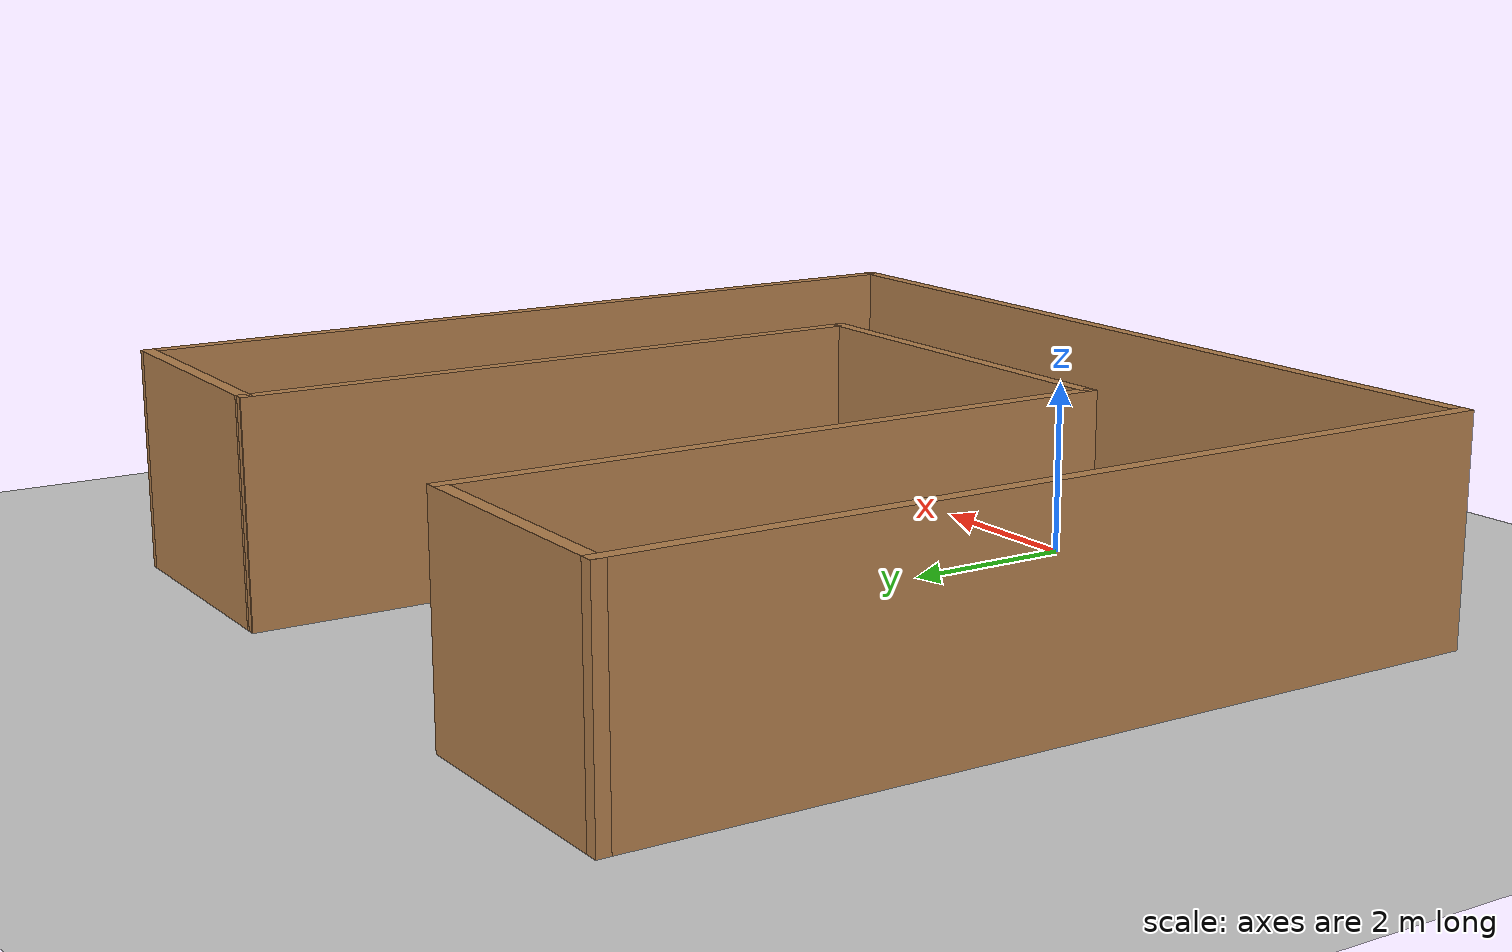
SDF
<sdf version="1.6">
 <world name="default">
  <light name="sun" type="directional">
   <pose>0 0 15 0 -0 0</pose>
   <diffuse>1 1 1 1</diffuse>
   <specular>0.1 0.1 0.1 1</specular>
   <attenuation>
    <range>1000</range>
    <constant>0.9</constant>
    <linear>0.01</linear>
    <quadratic>0.001</quadratic>
   </attenuation>
   <direction>-0.5 0.5 -1</direction>
  </light>
  <model name="ground_plane">
   <static>1</static>
   <link name="link">
    <collision name="collision">
     <geometry><plane><normal>0 0 1</normal><size>100 100</size></plane></geometry>
     <surface><friction><ode><mu>100</mu><mu2>50</mu2></ode></friction></surface>
    </collision>
    <visual name="visual">
     <transparency>1</transparency>
     <cast_shadows>0</cast_shadows>
     <geometry><plane><normal>0 0 1</normal><size>100 100</size></plane></geometry>
     <material>
      <script><uri>file://media/materials/scripts/gazebo.material</uri><name>Gazebo/Grey</name></script>
     </material>
    </visual>
   </link>
  </model>
  <gravity>0 0 -9.8</gravity>
  <magnetic_field>6e-06 2.3e-05 -4.2e-05</magnetic_field>
  <atmosphere type="adiabatic"/>
  <physics name="default_physics" default="0" type="ode">
   <max_step_size>0.001</max_step_size>
   <real_time_factor>1</real_time_factor>
   <real_time_update_rate>1000</real_time_update_rate>
  </physics>
  <scene><ambient>0.4 0.4 0.4 1</ambient><background>0.7 0.7 0.7 1</background><shadows>1</shadows></scene>
  <spherical_coordinates>
   <surface_model>EARTH_WGS84</surface_model>
   <latitude_deg>0</latitude_deg>
   <longitude_deg>0</longitude_deg>
   <elevation>0</elevation>
   <heading_deg>0</heading_deg>
  </spherical_coordinates>
  <model name="Uwolrd">
   <model name="MyUworld">
    <link name="Wall_0">
     <collision name="Wall_0_Collision">
      <geometry><box><size>2.92405 0.15 2.5</size></box></geometry>
      <pose>0 0 1.25 0 -0 0</pose>
     </collision>
     <visual name="Wall_0_Visual">
      <pose>0 0 1.25 0 -0 0</pose>
      <geometry><box><size>2.92405 0.15 2.5</size></box></geometry>
      <material>
       <script><uri>file://media/materials/scripts/gazebo.material</uri><name>Gazebo/Wood</name></script>
       <ambient>1 0 0 1</ambient>
      </material>
     </visual>
     <pose>-3.66328 4.9132 0 0 0 -3.14154</pose>
    </link>
    <link name="Wall_10">
     <collision name="Wall_10_Collision">
      <geometry><box><size>10.25 0.15 2.5</size></box></geometry>
      <pose>0 0 1.25 0 -0 0</pose>
     </collision>
     <visual name="Wall_10_Visual">
      <pose>0 0 1.25 0 -0 0</pose>
      <geometry><box><size>10.25 0.15 2.5</size></box></geometry>
      <material>
       <script><uri>file://media/materials/scripts/gazebo.material</uri><name>Gazebo/Wood</name></script>
       <ambient>1 0 0 1</ambient>
      </material>
     </visual>
     <pose>-0.000301 -4.93687 0 0 -0 3.14159</pose>
    </link>
    <link name="Wall_2">
     <collision name="Wall_2_Collision">
      <geometry><box><size>10 0.15 2.5</size></box></geometry>
      <pose>0 0 1.25 0 -0 0</pose>
     </collision>
     <visual name="Wall_2_Visual">
      <pose>0 0 1.25 0 -0 0</pose>
      <geometry><box><size>10 0.15 2.5</size></box></geometry>
      <material>
       <script><uri>file://media/materials/scripts/gazebo.material</uri><name>Gazebo/Wood</name></script>
       <ambient>1 0 0 1</ambient>
      </material>
     </visual>
     <pose>-5.0503 -0.011868 0 0 0 -1.5708</pose>
    </link>
    <link name="Wall_4">
     <collision name="Wall_4_Collision">
      <geometry><box><size>7.5 0.15 2.5</size></box></geometry>
      <pose>0 0 1.25 0 -0 0</pose>
     </collision>
     <visual name="Wall_4_Visual">
      <pose>0 0 1.25 0 -0 0</pose>
      <geometry><box><size>7.5 0.15 2.5</size></box></geometry>
      <material>
       <script><uri>file://media/materials/scripts/gazebo.material</uri><name>Gazebo/Wood</name></script>
       <ambient>1 0 0 1</ambient>
      </material>
     </visual>
     <pose>-2.27625 1.23826 0 0 0 -1.5708</pose>
    </link>
    <link name="Wall_6">
     <collision name="Wall_6_Collision">
      <geometry><box><size>4.52275 0.15 2.5</size></box></geometry>
      <pose>0 0 1.25 0 -0 0</pose>
     </collision>
     <visual name="Wall_6_Visual">
      <pose>0 0 1.25 0 -0 0</pose>
      <geometry><box><size>4.52275 0.15 2.5</size></box></geometry>
      <material>
       <script><uri>file://media/materials/scripts/gazebo.material</uri><name>Gazebo/Wood</name></script>
       <ambient>1 0 0 1</ambient>
      </material>
     </visual>
     <pose>-0.036678 -2.4368 0 0 0 -3e-05</pose>
    </link>
    <link name="Wall_7">
     <collision name="Wall_7_Collision">
      <geometry><box><size>7.52313 0.15 2.5</size></box></geometry>
      <pose>0 0 1.25 0 -0 0</pose>
     </collision>
     <visual name="Wall_7_Visual">
      <pose>0 0 1.25 0 -0 0</pose>
      <geometry><box><size>7.52313 0.15 2.5</size></box></geometry>
      <material>
       <script><uri>file://media/materials/scripts/gazebo.material</uri><name>Gazebo/Wood</name></script>
       <ambient>1 0 0 1</ambient>
      </material>
     </visual>
     <pose>2.17001 1.2497 0 0 -0 1.57003</pose>
    </link>
    <link name="Wall_8">
     <collision name="Wall_8_Collision">
      <geometry><box><size>3.00383 0.15 2.5</size></box></geometry>
      <pose>0 0 1.25 0 -0 0</pose>
     </collision>
     <visual name="Wall_8_Visual">
      <pose>0 0 1.25 0 -0 0</pose>
      <geometry><box><size>3.00383 0.15 2.5</size></box></geometry>
      <material>
       <script><uri>file://media/materials/scripts/gazebo.material</uri><name>Gazebo/Wood</name></script>
       <ambient>1 0 0 1</ambient>
      </material>
     </visual>
     <pose>3.62283 4.9247 0 0 0 -0.008105</pose>
    </link>
    <link name="Wall_9">
     <collision name="Wall_9_Collision">
      <geometry><box><size>10 0.15 2.5</size></box></geometry>
      <pose>0 0 1.25 0 -0 0</pose>
     </collision>
     <visual name="Wall_9_Visual">
      <pose>0 0 1.25 0 -0 0</pose>
      <geometry><box><size>10 0.15 2.5</size></box></geometry>
      <material>
       <script><uri>file://media/materials/scripts/gazebo.material</uri><name>Gazebo/Wood</name></script>
       <ambient>1 0 0 1</ambient>
      </material>
     </visual>
     <pose>5.0497 -0.011868 0 0 0 -1.5708</pose>
    </link>
    <static>1</static>
   </model>
   <static>0</static>
   <pose>0 4 0 0 -0 0</pose>
  </model>
 </world>
</sdf>
